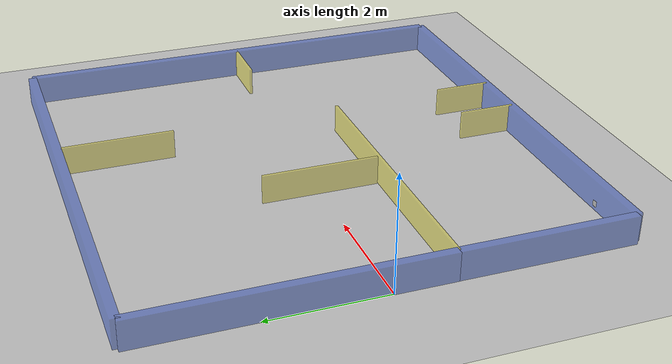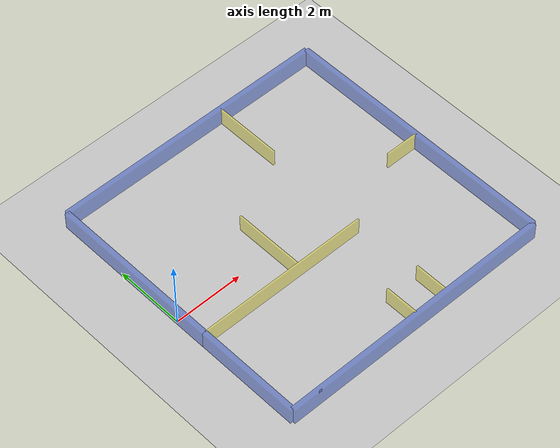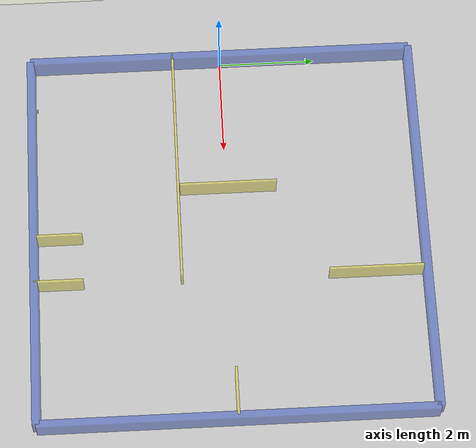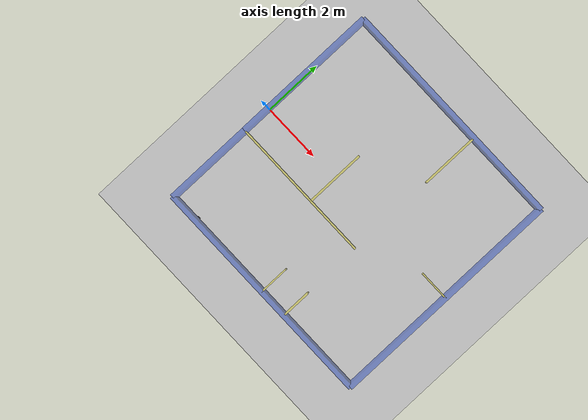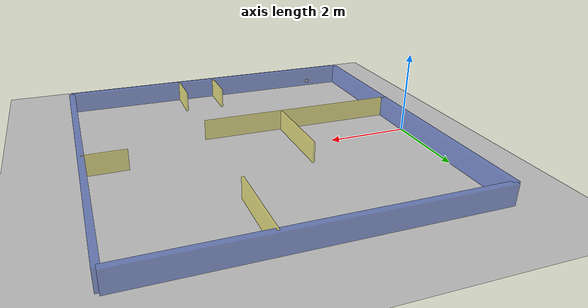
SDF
<sdf version="1.6">
 <world name="default">
  <include><uri>model://ground_plane</uri></include>
  <include><uri>model://sun</uri></include>
  <scene><shadows>false</shadows></scene>
  <include>
   <name>aruco_marker</name>
   <uri>model://aruco_marker_0</uri>
   <pose>0.984755 -3.883954 0.2 0 0 1.5707</pose>
   <scale>0.1 0.1 0.1</scale>
  </include>
  <physics type="ode">
   <real_time_update_rate>1000.0</real_time_update_rate>
   <max_step_size>0.001</max_step_size>
   <real_time_factor>1</real_time_factor>
   <ode>
    <solver>
     <type>quick</type>
     <iters>150</iters>
     <precon_iters>0</precon_iters>
     <sor>1.400000</sor>
     <use_dynamic_moi_rescaling>1</use_dynamic_moi_rescaling>
    </solver>
    <constraints>
     <cfm>0.00001</cfm>
     <erp>0.2</erp>
     <contact_max_correcting_vel>2000.000000</contact_max_correcting_vel>
     <contact_surface_layer>0.01000</contact_surface_layer>
    </constraints>
   </ode>
  </physics>
  <model name="wall_1a">
   <static>1</static>
   <pose>0 -2.5 0.3 0 -0 1.57</pose>
   <link name="link">
    <collision name="collision"><geometry><box><size>3 0.15 0.5</size></box></geometry></collision>
    <visual name="visual">
     <geometry><box><size>3 0.15 0.5</size></box></geometry>
     <material>
      <script><name>Gazebo/BlueTransparent</name><uri>file://media/materials/scripts/gazebo.material</uri></script>
     </material>
    </visual>
   </link>
  </model>
  <model name="wall_1b">
   <static>1</static>
   <pose>0 1.5 0.3 0 -0 1.57</pose>
   <link name="link">
    <collision name="collision"><geometry><box><size>5 0.15 0.5</size></box></geometry></collision>
    <visual name="visual">
     <geometry><box><size>5 0.15 0.5</size></box></geometry>
     <material>
      <script><name>Gazebo/BlueTransparent</name><uri>file://media/materials/scripts/gazebo.material</uri></script>
     </material>
    </visual>
   </link>
  </model>
  <model name="wall_2">
   <static>1</static>
   <pose>4 4 0.3 0 -0 0</pose>
   <link name="link">
    <collision name="collision"><geometry><box><size>8 0.15 0.5</size></box></geometry></collision>
    <visual name="visual">
     <geometry><box><size>8 0.15 0.5</size></box></geometry>
     <material>
      <script><name>Gazebo/BlueTransparent</name><uri>file://media/materials/scripts/gazebo.material</uri></script>
     </material>
    </visual>
   </link>
  </model>
  <model name="wall_3">
   <static>1</static>
   <pose>8 0 0.3 0 -0 1.57</pose>
   <link name="link">
    <collision name="collision"><geometry><box><size>8 0.15 0.5</size></box></geometry></collision>
    <visual name="visual">
     <geometry><box><size>8 0.15 0.5</size></box></geometry>
     <material>
      <script><name>Gazebo/BlueTransparent</name><uri>file://media/materials/scripts/gazebo.material</uri></script>
     </material>
    </visual>
   </link>
  </model>
  <model name="wall_4">
   <static>1</static>
   <pose>4 -4 0.3 0 -0 0</pose>
   <link name="link">
    <collision name="collision"><geometry><box><size>8 0.15 0.5</size></box></geometry></collision>
    <visual name="visual">
     <geometry><box><size>8 0.15 0.5</size></box></geometry>
     <material>
      <script><name>Gazebo/BlueTransparent</name><uri>file://media/materials/scripts/gazebo.material</uri></script>
     </material>
    </visual>
   </link>
  </model>
  <model name="wall_5">
   <static>1</static>
   <pose>2.988018 0.036093 0.3 0 -0 1.57</pose>
   <link name="link">
    <collision name="collision"><geometry><box><size>2 0.05 0.5</size></box></geometry></collision>
    <visual name="visual">
     <geometry><box><size>2 0.05 0.5</size></box></geometry>
     <material>
      <script>
       <name>Gazebo/YellowTransparent</name>
       <uri>file://media/materials/scripts/gazebo.material</uri>
      </script>
     </material>
    </visual>
   </link>
  </model>
  <model name="wall_6">
   <static>1</static>
   <pose>2.5 -1 0.3 0 -0 0</pose>
   <link name="link">
    <collision name="collision"><geometry><box><size>5 0.05 0.5</size></box></geometry></collision>
    <visual name="visual">
     <geometry><box><size>5 0.05 0.5</size></box></geometry>
     <material>
      <script>
       <name>Gazebo/YellowTransparent</name>
       <uri>file://media/materials/scripts/gazebo.material</uri>
      </script>
     </material>
    </visual>
   </link>
  </model>
  <model name="wall_7">
   <static>1</static>
   <pose>5 3 0.3 0 -0 1.57</pose>
   <link name="link">
    <collision name="collision"><geometry><box><size>2 0.05 0.5</size></box></geometry></collision>
    <visual name="visual">
     <geometry><box><size>2 0.05 0.5</size></box></geometry>
     <material>
      <script>
       <name>Gazebo/YellowTransparent</name>
       <uri>file://media/materials/scripts/gazebo.material</uri>
      </script>
     </material>
    </visual>
   </link>
  </model>
  <model name="wall_8">
   <static>1</static>
   <pose>5 -3.5 0.3 0 -0 1.57</pose>
   <link name="link">
    <collision name="collision"><geometry><box><size>1 0.05 0.5</size></box></geometry></collision>
    <visual name="visual">
     <geometry><box><size>1 0.05 0.5</size></box></geometry>
     <material>
      <script>
       <name>Gazebo/YellowTransparent</name>
       <uri>file://media/materials/scripts/gazebo.material</uri>
      </script>
     </material>
    </visual>
   </link>
  </model>
  <model name="wall_9">
   <static>1</static>
   <pose>4 -3.5 0.3 0 -0 1.5707</pose>
   <link name="link">
    <collision name="collision"><geometry><box><size>1 0.05 0.5</size></box></geometry></collision>
    <visual name="visual">
     <geometry><box><size>1 0.05 0.5</size></box></geometry>
     <material>
      <script>
       <name>Gazebo/YellowTransparent</name>
       <uri>file://media/materials/scripts/gazebo.material</uri>
      </script>
     </material>
    </visual>
   </link>
  </model>
  <model name="wall_10">
   <static>1</static>
   <pose>7.5 0 0.3 0 -0 0</pose>
   <link name="link">
    <collision name="collision"><geometry><box><size>1 0.05 0.5</size></box></geometry></collision>
    <visual name="visual">
     <geometry><box><size>1 0.05 0.5</size></box></geometry>
     <material>
      <script>
       <name>Gazebo/YellowTransparent</name>
       <uri>file://media/materials/scripts/gazebo.material</uri>
      </script>
     </material>
    </visual>
   </link>
  </model>
 </world>
</sdf>

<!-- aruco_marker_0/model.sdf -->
<sdf version="1.6">
  <model name="aruco_marker_0">
    <static>false</static>
    <link name="link">
      <gravity>false</gravity>
      <inertial>
        <pose>0 0 0 0 0 0</pose>
        <mass>0.001</mass>
        <inertia>
          <ixx>3.7499999999999997e-06</ixx>
          <ixy>0.0</ixy>
          <ixz>0.0</ixz>
          <iyy>1.8750008333333333e-06</iyy>
          <iyz>0.0</iyz>
          <izz>1.8750008333333333e-06</izz>
        </inertia>
      </inertial>
      <visual name="front_visual">
        <pose>0.00005 0 0 0 0 0</pose>
        <geometry>
          <box>
            <size>0.0001 0.100 0.100</size>
          </box>
        </geometry>
        <material>
          <script>
            <uri>model://aruco_marker_0/materials/scripts</uri>
            <uri>model://aruco_marker_0/materials/textures</uri>
            <name>aruco_marker_0</name>
          </script>
        </material>
      </visual>
      <!-- Hide the marker from the back -->
      <visual name="rear_visual">
        <pose>-0.00005 0 0 0 0 0</pose>
        <geometry>
          <box>
            <size>0.0001 0.100 0.100</size>
          </box>
        </geometry>
        <plugin name="disable_shadows_plugin" filename="libdisable_shadows_plugin.so">
          <ros>
          </ros>
        </plugin>
      </visual>
      <collision name="collision">
        <pose>0 0 0 0 0 0</pose>
        <geometry>
          <box>
            <size>0.0001 0.100 0.100</size>
          </box>
        </geometry>
      </collision>
    </link>
  </model>
</sdf>
